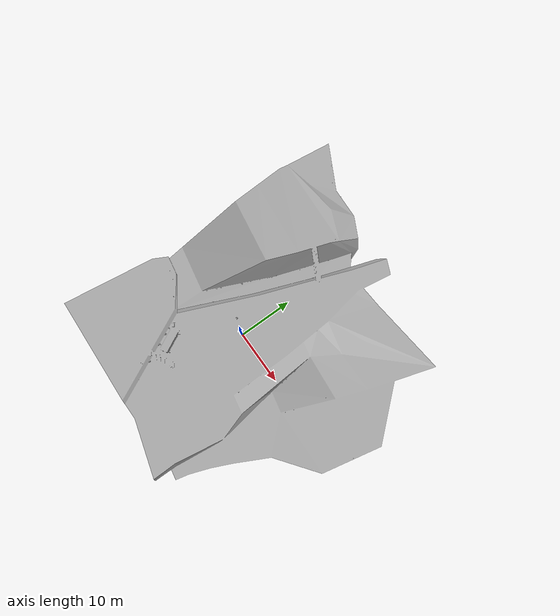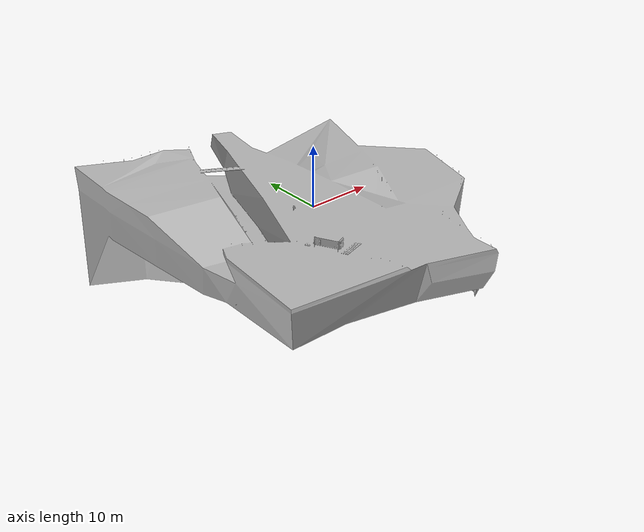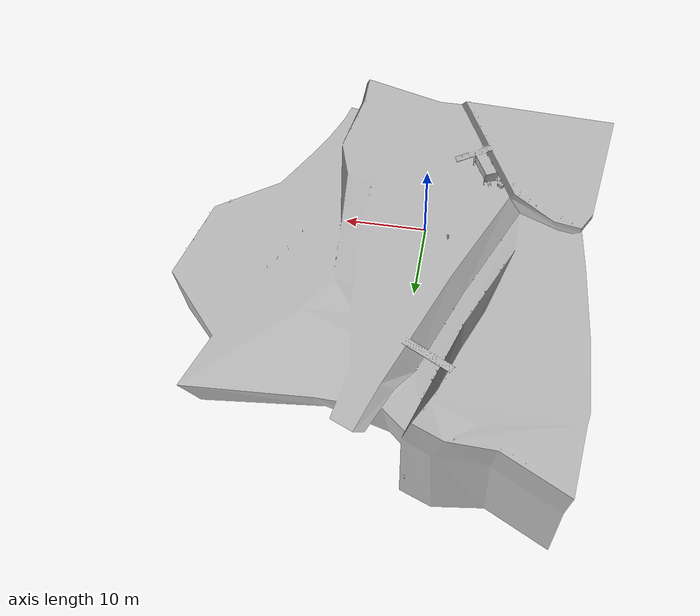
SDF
<?xml version="1.0" ?>
<sdf version="1.4">
  <!-- We use a custom world for the robot so that the camera angle is launched correctly -->

  <world name="default">

    <!-- Global light source -->

    <scene>
    <grid>false</grid>
    </scene>

    <include>
      <uri>model://space_ice</uri>
       <pose>0.0 0.0 0.0 0 0 0</pose>
    </include>

    <include>
      <uri>model://astronaut_pro</uri>
       <pose>-3 1.0 -0.244979 0 0 0</pose>
    </include>

    <!-- Example of a directional light -->
    <light name='custom_directional_light' type='directional'>
      <pose>0.0 0.0 10.0 0 -0 0</pose> <!-- Adjust the pose as needed -->
      <diffuse>0.8 0.8 0.8 1</diffuse> <!-- Color and intensity of the light -->
      <specular>0.2 0.2 0.2 1</specular> <!-- Specular highlights color -->
      <direction>-0.5 -0.5 -1</direction> <!-- Direction of the light -->
      <cast_shadows>true</cast_shadows> <!-- Whether the light casts shadows -->
    </light>

        <light name='user_point_light_1' type='point'>
      <pose>0.0 -8.0 5.0 0 -0 0</pose>
      <diffuse>0.5 0.5 0.5 1</diffuse>
      <specular>0.1 0.1 0.1 1</specular>
      <attenuation>
        <range>100</range>
        <constant>0.6</constant>
        <linear>0.1</linear>
        <quadratic>0.001</quadratic>
      </attenuation>
      <cast_shadows>0</cast_shadows>
      <direction>0 0 -1</direction>
    </light>

        <light name='user_point_light_2' type='point'>
      <pose>0.0 8.0 5.0 0 -0 0</pose>
      <diffuse>0.5 0.5 0.5 1</diffuse>
      <specular>0.1 0.1 0.1 1</specular>
      <attenuation>
        <range>100</range>
        <constant>0.6</constant>
        <linear>0.1</linear>
        <quadratic>0.001</quadratic>
      </attenuation>
      <cast_shadows>0</cast_shadows>
      <direction>0 0 -1</direction>
    </light>

    <plugin name="gazebo_ros_state" filename="libgazebo_ros_state.so">
      <ros>
        <namespace>/gazebo</namespace>
      </ros>
      <update_rate>5.0</update_rate>
    </plugin>

  </world>
</sdf>

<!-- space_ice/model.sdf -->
<sdf version='1.4'>
  <model name="space_ice">
      <static>1</static>
        <link name='link_1'>
            <visual name='visual'>
            <pose frame=''>0 0 0 0 0 0</pose>
            <geometry>
            <mesh>
                <uri>model://space_ice/meshes/space_ice.dae</uri>
                <scale>0.5 0.5 0.5</scale>
            </mesh>
            </geometry>
            <cast_shadows>0</cast_shadows>
            <transparency>0</transparency>
        </visual>

        <collision name='collision'>
            <laser_retro>0</laser_retro>
            <pose frame=''>0 0 0 0 0 0</pose>
            <geometry>
            <mesh>
                <uri>model://space_ice/meshes/space_ice.stl</uri>
                <scale>0.5 0.5 0.5</scale>
            </mesh>
            </geometry>
        </collision>
        </link>
  </model>
</sdf>

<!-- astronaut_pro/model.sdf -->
<sdf version='1.4'>
  <model name="astronaut_pro">
      <static>1</static>
        <link name='link_1'>
            <visual name='visual'>
            <pose frame=''>0 0 0 0 0 0</pose>
            <geometry>
            <mesh>
                <uri>model://astronaut_pro/meshes/astronaut_pro.dae</uri>
                <scale>0.0035 0.0035 0.0035</scale>
            </mesh>
            </geometry>
            <cast_shadows>0</cast_shadows>
            <transparency>0</transparency>
        </visual>

        <collision name='collision'>
            <laser_retro>0</laser_retro>
            <pose frame=''>0 0 0 0 0 0</pose>
            <geometry>
            <mesh>
                <uri>model://astronaut_pro/meshes/astronaut_pro.stl</uri>
                <scale>0.0035 0.0035 0.0035</scale>
            </mesh>
            </geometry>
        </collision>
        </link>
  </model>
</sdf>
